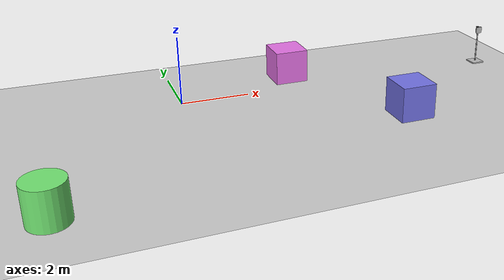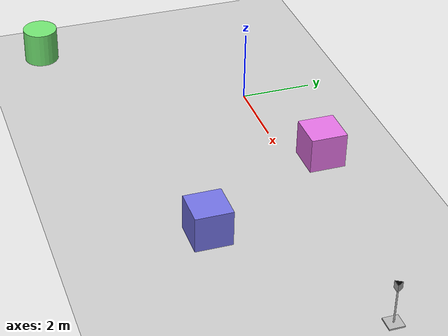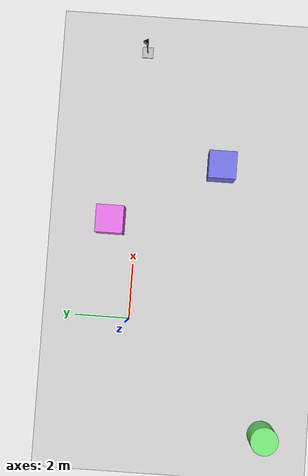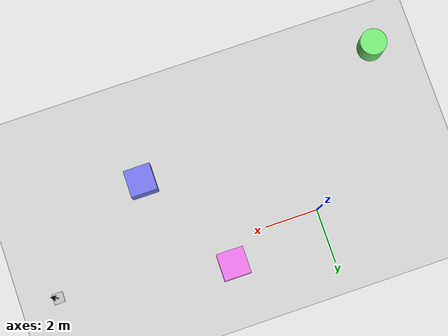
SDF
<?xml version="1.0" ?>
<sdf version="1.6">
  <world name="flat">

    <plugin
      filename="gz-sim-physics-system"
      name="gz::sim::systems::Physics">
    </plugin>
    <plugin
      filename="gz-sim-user-commands-system"
      name="gz::sim::systems::UserCommands">
    </plugin>
    <plugin
      filename="gz-sim-scene-broadcaster-system"
      name="gz::sim::systems::SceneBroadcaster">
    </plugin>
    <plugin
      filename="gz-sim-contact-system"
      name="gz::sim::systems::Contact">
    </plugin>

    <physics type="ode">
      <real_time_update_rate>1000.0</real_time_update_rate>
      <max_step_size>0.001</max_step_size>
      <real_time_factor>1</real_time_factor>
      <ode>
        <solver>
          <type>quick</type>
          <iters>150</iters>
          <precon_iters>0</precon_iters>
          <sor>1.400000</sor>
          <use_dynamic_moi_rescaling>1</use_dynamic_moi_rescaling>
        </solver>
        <constraints>
          <cfm>0.00001</cfm>
          <erp>0.2</erp>
          <contact_max_correcting_vel>2000.000000</contact_max_correcting_vel>
          <contact_surface_layer>0.01000</contact_surface_layer>
        </constraints>
      </ode>
    </physics>

    <include>
      <uri>
        https://fuel.gazebosim.org/1.0/OpenRobotics/models/Ground Plane
      </uri>
    </include>

    <include>
      <uri>
        https://fuel.gazebosim.org/1.0/OpenRobotics/models/Sun
      </uri>
      <pose>2 -10 10 0.8 -0.8 0</pose>
    </include>

    <spherical_coordinates>
      <surface_model>EARTH_WGS84</surface_model>
      <world_frame_orientation>ENU</world_frame_orientation>
      <latitude_deg>38.367167</latitude_deg>
      <longitude_deg>-110.714849</longitude_deg>
      <elevation>1370.0192172613349</elevation>
      <heading_deg>0</heading_deg>
    </spherical_coordinates>

    <!-- Random features for visual odometry and obstacle avoidance -->

    <model name='box_0'>
      <pose>5.78862 -3.02551 0.5 0 -0 0</pose>
      <link name='link'>
        <inertial>
          <mass>1</mass>
          <inertia>
            <ixx>0.166667</ixx>
            <ixy>0</ixy>
            <ixz>0</ixz>
            <iyy>0.166667</iyy>
            <iyz>0</iyz>
            <izz>0.166667</izz>
          </inertia>
          <pose>0 0 0 0 -0 0</pose>
        </inertial>
        <collision name='collision'>
          <geometry>
            <box>
              <size>0.999996 1 1</size>
            </box>
          </geometry>
          <max_contacts>10</max_contacts>
          <surface>
            <contact>
              <ode/>
            </contact>
            <bounce/>
            <friction>
              <torsional>
                <ode/>
              </torsional>
              <ode/>
            </friction>
          </surface>
        </collision>
        <visual name='visual'>
          <geometry>
            <box>
              <size>0.999996 1 1</size>
            </box>
          </geometry>
          <material>
            <ambient>0.4 0.4 0.4 1</ambient>
            <diffuse>0.45 0.45 0.9 1</diffuse>
            <specular>0 0 0 0</specular>
            <emissive>0 0 0 1</emissive>
          </material>
        </visual>
        <self_collide>0</self_collide>
        <enable_wind>0</enable_wind>
        <kinematic>0</kinematic>
      </link>
    </model>

    <model name='box_1'>
      <pose>3.56847 0.89838 0.5 0 -0 0</pose>
      <link name='link'>
        <inertial>
          <mass>1</mass>
          <inertia>
            <ixx>0.166667</ixx>
            <ixy>0</ixy>
            <ixz>0</ixz>
            <iyy>0.166667</iyy>
            <iyz>0</iyz>
            <izz>0.166667</izz>
          </inertia>
          <pose>0 0 0 0 -0 0</pose>
        </inertial>
        <collision name='collision'>
          <geometry>
            <box>
              <size>1 1 1</size>
            </box>
          </geometry>
          <max_contacts>10</max_contacts>
          <surface>
            <contact>
              <ode/>
            </contact>
            <bounce/>
            <friction>
              <torsional>
                <ode/>
              </torsional>
              <ode/>
            </friction>
          </surface>
        </collision>
        <visual name='visual'>
          <geometry>
            <box>
              <size>1 1 1</size>
            </box>
          </geometry>
          <material>
            <ambient>0.4 0.4 0.4 1</ambient>
            <diffuse>0.9 0.45 0.9 1</diffuse>
            <specular>0 0 0 0</specular>
            <emissive>0 0 0 1</emissive>
          </material>
        </visual>
        <self_collide>0</self_collide>
        <enable_wind>0</enable_wind>
        <kinematic>0</kinematic>
      </link>
    </model>

    <model name='cylinder_0'>
      <pose>-3.91771 -5.12593 0.5 0 -0 0</pose>
      <link name='link'>
        <inertial>
          <mass>1</mass>
          <inertia>
            <ixx>0.145833</ixx>
            <ixy>0</ixy>
            <ixz>0</ixz>
            <iyy>0.145833</iyy>
            <iyz>0</iyz>
            <izz>0.125</izz>
          </inertia>
          <pose>0 0 0 0 -0 0</pose>
        </inertial>
        <collision name='collision'>
          <geometry>
            <cylinder>
              <radius>0.5</radius>
              <length>1</length>
            </cylinder>
          </geometry>
          <max_contacts>10</max_contacts>
          <surface>
            <contact>
              <ode/>
            </contact>
            <bounce/>
            <friction>
              <torsional>
                <ode/>
              </torsional>
              <ode/>
            </friction>
          </surface>
        </collision>
        <visual name='visual'>
          <geometry>
            <cylinder>
              <radius>0.5</radius>
              <length>1</length>
            </cylinder>
          </geometry>
          <material>
            <ambient>0.4 0.4 0.4 1</ambient>
            <diffuse>0.45 0.9 0.45 1</diffuse>
            <specular>0 0 0 0</specular>
            <emissive>0 0 0 1</emissive>
          </material>
        </visual>
        <self_collide>0</self_collide>
        <enable_wind>0</enable_wind>
        <kinematic>0</kinematic>
      </link>
    </model>

    <include>
      <uri>model://ar_tag</uri>
      <pose>10 0 0 0 0 0</pose>
    </include>

    <scene>
      <shadows>true</shadows>
    </scene>

    <gui fullscreen='0'>
      <camera name='user_camera'>
        <pose frame=''>0 0 15 0 1.570796 0</pose>
        <view_controller>orbit</view_controller>
        <projection_type>perspective</projection_type>
      </camera>
    </gui>

  </world>
</sdf>

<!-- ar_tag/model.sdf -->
<sdf version="1.6">
  <model name="ar_tag">
    <static>true</static>
    <link name="link">
      <inertial>
        <mass>12.0</mass>
        <inertia>
          <ixx>5200.0</ixx>
          <ixy>0.0</ixy>
          <ixz>0.0</ixz>
          <iyy>5200.0</iyy>
          <iyz>0.0</iyz>
          <izz>230.0</izz>
        </inertia>
      </inertial>
      <collision name="collision">
        <geometry>
          <mesh>
            <scale>1 1 1</scale>
            <uri>model://ar_tag/meshes/ar_tag.stl</uri>
          </mesh>
        </geometry>
      </collision>
      <visual name="visual">
        <geometry>
          <mesh>
            <scale>1 1 1</scale>
            <uri>model://ar_tag/meshes/ar_tag.dae</uri>
          </mesh>
        </geometry>
      </visual>
    </link>
  </model>
</sdf>
